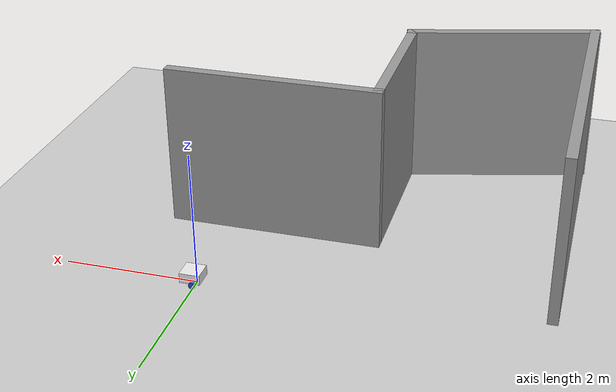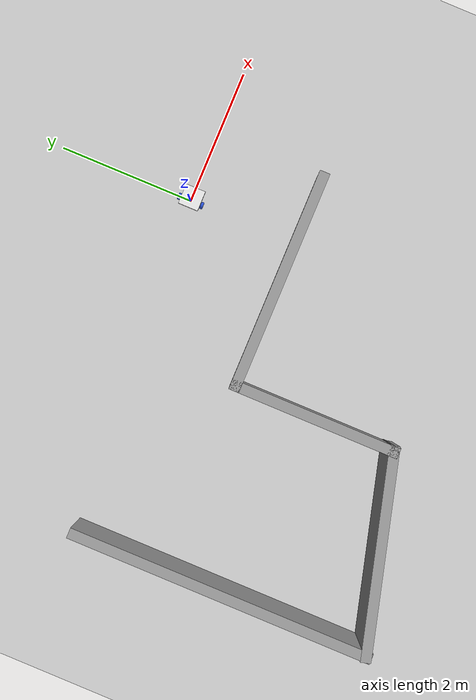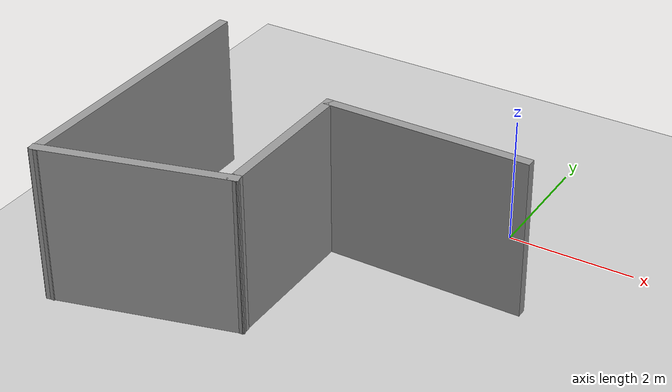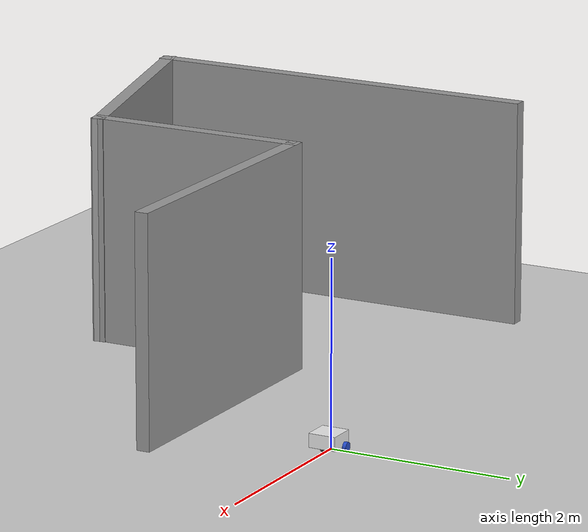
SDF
<sdf version="1.7">
 <world name="default">
  <light name="sun" type="directional">
   <pose>0 0 10 0 -0 0</pose>
   <diffuse>0.8 0.8 0.8 1</diffuse>
   <specular>0.2 0.2 0.2 1</specular>
   <attenuation>
    <range>1000</range>
    <constant>0.9</constant>
    <linear>0.01</linear>
    <quadratic>0.001</quadratic>
   </attenuation>
   <direction>-0.5 0.1 -0.9</direction>
   <spot><inner_angle>0</inner_angle><outer_angle>0</outer_angle><falloff>0</falloff></spot>
  </light>
  <model name="ground_plane">
   <static>1</static>
   <link name="link">
    <collision name="collision">
     <geometry><plane><normal>0 0 1</normal><size>100 100</size></plane></geometry>
     <surface><friction><ode><mu>100</mu><mu2>50</mu2></ode></friction></surface>
    </collision>
    <visual name="visual">
     <cast_shadows>0</cast_shadows>
     <geometry><plane><normal>0 0 1</normal><size>100 100</size></plane></geometry>
     <material>
      <script><uri>file://media/materials/scripts/gazebo.material</uri><name>Gazebo/Grey</name></script>
     </material>
    </visual>
   </link>
  </model>
  <gravity>0 0 -9.8</gravity>
  <magnetic_field>6e-06 2.3e-05 -4.2e-05</magnetic_field>
  <atmosphere type="adiabatic"/>
  <physics type="ode">
   <max_step_size>0.001</max_step_size>
   <real_time_factor>1</real_time_factor>
   <real_time_update_rate>1000</real_time_update_rate>
  </physics>
  <scene><ambient>0.4 0.4 0.4 1</ambient><background>0.7 0.7 0.7 1</background><shadows>1</shadows></scene>
  <audio><device>default</device></audio>
  <spherical_coordinates>
   <surface_model>EARTH_WGS84</surface_model>
   <latitude_deg>0</latitude_deg>
   <longitude_deg>0</longitude_deg>
   <elevation>0</elevation>
   <heading_deg>0</heading_deg>
  </spherical_coordinates>
  <model name="my_bot">
   <link name="base_link">
    <inertial>
     <pose>0.065 0 0.0625 0 -0 0</pose>
     <mass>0.6</mass>
     <inertia>
      <ixx>0.00525625</ixx>
      <ixy>0</ixy>
      <ixz>0.0005625</ixz>
      <iyy>0.00593125</iyy>
      <iyz>0</iyz>
      <izz>0.008275</izz>
     </inertia>
    </inertial>
    <collision name="base_link_fixed_joint_lump__chassis_collision">
     <pose>0.05 0 0.075 0 -0 0</pose>
     <geometry><box><size>0.3 0.3 0.15</size></box></geometry>
    </collision>
    <collision name="base_link_fixed_joint_lump__caster_wheel_collision_1">
     <pose>0.14 0 0 0 -0 0</pose>
     <geometry><sphere><radius>0.05</radius></sphere></geometry>
     <surface><friction><ode><mu>0.001</mu><mu2>0.001</mu2></ode></friction></surface>
    </collision>
    <visual name="base_link_fixed_joint_lump__chassis_visual">
     <pose>0.05 0 0.075 0 -0 0</pose>
     <geometry><box><size>0.3 0.3 0.15</size></box></geometry>
     <material>
      <script><name>Gazebo/White</name><uri>file://media/materials/scripts/gazebo.material</uri></script>
     </material>
    </visual>
    <visual name="base_link_fixed_joint_lump__caster_wheel_visual_1">
     <pose>0.14 0 0 0 -0 0</pose>
     <geometry><sphere><radius>0.05</radius></sphere></geometry>
     <material>
      <script><name>Gazebo/Black</name><uri>file://media/materials/scripts/gazebo.material</uri></script>
     </material>
    </visual>
   </link>
   <joint name="left_wheel_joint" type="revolute">
    <pose relative_to="base_link">0 0.175 0 -1.5708 0 0</pose>
    <parent>base_link</parent>
    <child>left_wheel</child>
    <axis>
     <xyz>0 0 1</xyz>
     <limit><lower>-1e+16</lower><upper>1e+16</upper></limit>
     <dynamics><spring_reference>0</spring_reference><spring_stiffness>0</spring_stiffness></dynamics>
    </axis>
   </joint>
   <link name="left_wheel">
    <pose relative_to="left_wheel_joint">0 0 0 0 -0 0</pose>
    <inertial>
     <mass>0.1</mass>
     <inertia>
      <ixx>7.58333e-05</ixx>
      <ixy>0</ixy>
      <ixz>0</ixz>
      <iyy>7.58333e-05</iyy>
      <iyz>0</iyz>
      <izz>0.000125</izz>
     </inertia>
    </inertial>
    <collision name="left_wheel_collision">
     <geometry><cylinder><length>0.04</length><radius>0.05</radius></cylinder></geometry>
    </collision>
    <visual name="left_wheel_visual">
     <geometry><cylinder><length>0.04</length><radius>0.05</radius></cylinder></geometry>
     <material>
      <script><name>Gazebo/Blue</name><uri>file://media/materials/scripts/gazebo.material</uri></script>
     </material>
    </visual>
   </link>
   <joint name="right_wheel_joint" type="revolute">
    <pose relative_to="base_link">0 -0.175 0 1.5708 -0 0</pose>
    <parent>base_link</parent>
    <child>right_wheel</child>
    <axis>
     <xyz>0 0 -1</xyz>
     <limit><lower>-1e+16</lower><upper>1e+16</upper></limit>
     <dynamics><spring_reference>0</spring_reference><spring_stiffness>0</spring_stiffness></dynamics>
    </axis>
   </joint>
   <link name="right_wheel">
    <pose relative_to="right_wheel_joint">0 0 0 0 -0 0</pose>
    <inertial>
     <mass>0.1</mass>
     <inertia>
      <ixx>7.58333e-05</ixx>
      <ixy>0</ixy>
      <ixz>0</ixz>
      <iyy>7.58333e-05</iyy>
      <iyz>0</iyz>
      <izz>0.000125</izz>
     </inertia>
    </inertial>
    <collision name="right_wheel_collision">
     <geometry><cylinder><length>0.04</length><radius>0.05</radius></cylinder></geometry>
    </collision>
    <visual name="right_wheel_visual">
     <geometry><cylinder><length>0.04</length><radius>0.05</radius></cylinder></geometry>
     <material>
      <script><name>Gazebo/Blue</name><uri>file://media/materials/scripts/gazebo.material</uri></script>
     </material>
    </visual>
   </link>
   <static>0</static>
   <plugin name="diff_drive" filename="libgazebo_ros_diff_drive.so">
    <left_joint>left_wheel_joint</left_joint>
    <right_joint>right_wheel_joint</right_joint>
    <wheel_separation>0.35</wheel_separation>
    <wheel_diameter>0.1</wheel_diameter>
    <max_wheel_torque>200</max_wheel_torque>
    <max_wheel_acceleration>10.0</max_wheel_acceleration>
    <odometry_frame>odom</odometry_frame>
    <robot_base_frame>base_link</robot_base_frame>
    <publish_odom>1</publish_odom>
    <publish_odom_tf>1</publish_odom_tf>
    <publish_wheel_tf>1</publish_wheel_tf>
   </plugin>
   <pose>0.003869 1.2e-05 0.05 0 1.5e-05 2e-06</pose>
  </model>
  <model name="first_wall_gz">
   <pose>-2.01988 -2.40492 0 0 -0 0</pose>
   <link name="Wall_0">
    <collision name="Wall_0_Collision">
     <geometry><box><size>3.25 0.15 2.5</size></box></geometry>
     <pose>0 0 1.25 0 -0 0</pose>
    </collision>
    <visual name="Wall_0_Visual">
     <pose>0 0 1.25 0 -0 0</pose>
     <geometry><box><size>3.25 0.15 2.5</size></box></geometry>
     <material>
      <script><uri>file://media/materials/scripts/gazebo.material</uri><name>Gazebo/Grey</name></script>
      <ambient>1 1 1 1</ambient>
     </material>
     <meta><layer>0</layer></meta>
    </visual>
    <pose>1.37988 0.774918 0 0 -0 3.14159</pose>
   </link>
   <link name="Wall_1">
    <collision name="Wall_1_Collision">
     <geometry><box><size>0.15 0.15 2.5</size></box></geometry>
     <pose>0 0 1.25 0 -0 0</pose>
    </collision>
    <visual name="Wall_1_Visual">
     <pose>0 0 1.25 0 -0 0</pose>
     <geometry><box><size>0.15 0.15 2.5</size></box></geometry>
     <material>
      <script><uri>file://media/materials/scripts/gazebo.material</uri><name>Gazebo/Grey</name></script>
      <ambient>1 1 1 1</ambient>
     </material>
     <meta><layer>0</layer></meta>
    </visual>
    <pose>-0.170118 0.774918 0 0 -0 0</pose>
   </link>
   <link name="Wall_2">
    <collision name="Wall_2_Collision">
     <geometry><box><size>2.5 0.15 2.5</size></box></geometry>
     <pose>0 0 1.25 0 -0 0</pose>
    </collision>
    <visual name="Wall_2_Visual">
     <pose>0 0 1.25 0 -0 0</pose>
     <geometry><box><size>2.5 0.15 2.5</size></box></geometry>
     <material>
      <script><uri>file://media/materials/scripts/gazebo.material</uri><name>Gazebo/Grey</name></script>
      <ambient>1 1 1 1</ambient>
     </material>
     <meta><layer>0</layer></meta>
    </visual>
    <pose>-0.170118 -0.400082 0 0 -0 -1.5708</pose>
   </link>
   <link name="Wall_3">
    <collision name="Wall_3_Collision">
     <geometry><box><size>0.16 0.15 2.5</size></box></geometry>
     <pose>0 0 1.25 0 -0 0</pose>
    </collision>
    <visual name="Wall_3_Visual">
     <pose>0 0 1.25 0 -0 0</pose>
     <geometry><box><size>0.16 0.15 2.5</size></box></geometry>
     <material>
      <script><uri>file://media/materials/scripts/gazebo.material</uri><name>Gazebo/Grey</name></script>
      <ambient>1 1 1 1</ambient>
     </material>
     <meta><layer>0</layer></meta>
    </visual>
    <pose>-0.165118 -1.57508 0 0 -0 0</pose>
   </link>
   <link name="Wall_4">
    <collision name="Wall_4_Collision">
     <geometry><box><size>3 0.15 2.5</size></box></geometry>
     <pose>0 0 1.25 0 -0 0</pose>
    </collision>
    <visual name="Wall_4_Visual">
     <pose>0 0 1.25 0 -0 0</pose>
     <geometry><box><size>3 0.15 2.5</size></box></geometry>
     <material>
      <script><uri>file://media/materials/scripts/gazebo.material</uri><name>Gazebo/Grey</name></script>
      <ambient>1 1 1 1</ambient>
     </material>
     <meta><layer>0</layer></meta>
    </visual>
    <pose>-1.53662 -1.94408 0 0 -0 -2.87968</pose>
   </link>
   <link name="Wall_5">
    <collision name="Wall_5_Collision">
     <geometry><box><size>4.5 0.15 2.5</size></box></geometry>
     <pose>0 0 1.25 0 -0 0</pose>
    </collision>
    <visual name="Wall_5_Visual">
     <pose>0 0 1.25 0 -0 0</pose>
     <geometry><box><size>4.5 0.15 2.5</size></box></geometry>
     <material>
      <script><uri>file://media/materials/scripts/gazebo.material</uri><name>Gazebo/Grey</name></script>
      <ambient>1 1 1 1</ambient>
     </material>
     <meta><layer>0</layer></meta>
    </visual>
    <pose>-2.91306 -0.137899 0 0 -0 1.57077</pose>
   </link>
   <static>1</static>
  </model>
 </world>
</sdf>
